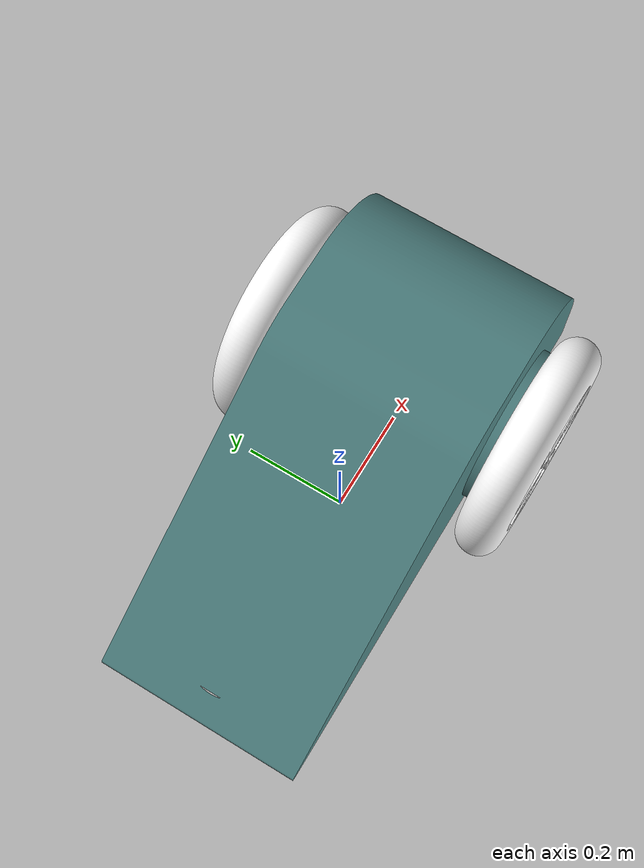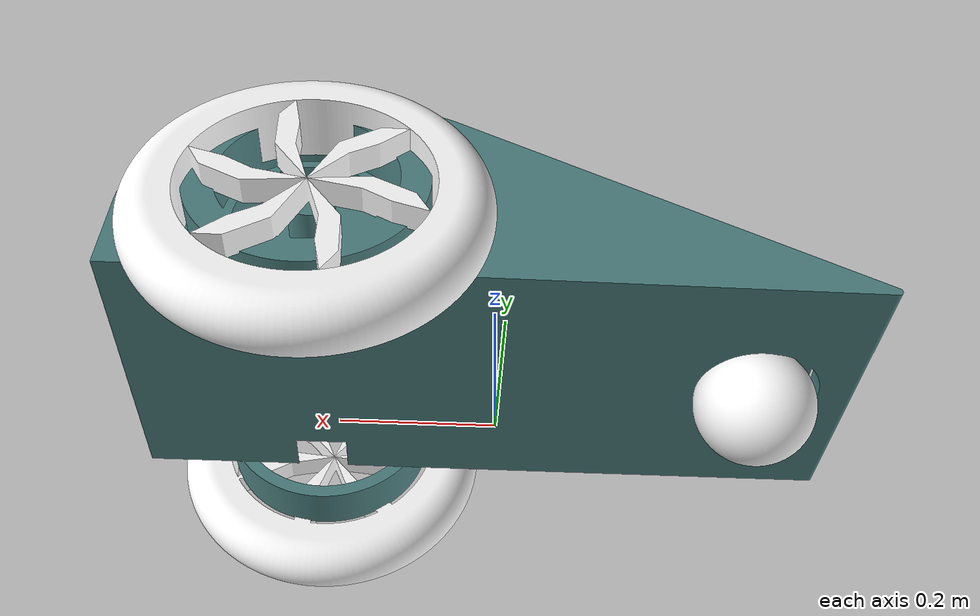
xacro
<?xml version="1.0"?>
<robot xmlns:xacro="http://www.ros.org/wiki/xacro" name="robot_car">

    <!-- Material definitions -->
    <material name="grey">
        <color rgba="0.3 0.5 0.5 1"/>
    </material>

    <material name="white">
        <color rgba="1 1 1 1"/>
    </material>

    <!-- Macro for collision -->
    <xacro:macro name="add_collision" params="name o_xyz o_rpy">
        <collision>
            <origin xyz="${o_xyz}" rpy="${o_rpy}"/>
            <geometry>
                <mesh filename="package://robot_car/meshes/${name}.stl" scale="0.01 0.01 0.01"/>
            </geometry>
        </collision>
    </xacro:macro>

    <!-- innertialro for collision -->

<xacro:macro name="add_inertial" params="mass ixx ixy ixz iyy iyz izz">
  <inertial>
    <origin xyz="0 0 0" rpy="0 0 0"/>
    <mass value="${mass}"/>
    <inertia
      ixx="${ixx}" ixy="${ixy}" ixz="${ixz}"
      iyy="${iyy}" iyz="${iyz}" izz="${izz}"/>
  </inertial>
</xacro:macro>

<xacro:macro name="wheel_inertial" params="mass radius height">
  <inertial>
    <origin xyz="0 0 0" rpy="0 0 0"/>
    <mass value="${mass}"/>
    <inertia
      ixx="${(1/12.0) * mass * (3*radius*radius + height*height)}"
      ixy="0.0"
      ixz="0.0"
      iyy="${0.5 * mass * radius * radius}"
      iyz="0.0"
      izz="${(1/12.0) * mass * (3*radius*radius + height*height)}"/>
  </inertial>
</xacro:macro>

    <!-- Base link -->
    <link name="base_link"/>

    <!-- Caster wheel -->
    <link name="caster_wheel">
        <visual>
            <origin xyz="0 0 0" rpy="0 0 0"/>
            <geometry>
                <mesh filename="package://robot_car/meshes/cast.stl" scale="0.01 0.01 0.01"/>
            </geometry>
            <material name="white"/>
        </visual>
        <xacro:add_collision name="cast" o_xyz="0 0 0" o_rpy="0 0 0"/>

    <xacro:add_inertial
  mass="0.00271"
  ixx="0.059836" ixy="0" ixz="0"
  iyy="0.059846" iyz="0" izz="0.059846"/>

    </link>

    <!-- Car body -->
    <link name="car_body">
        <visual>
            <origin xyz="0 0 0" rpy="0 0 0"/>
            <geometry>
                <mesh filename="package://robot_car/meshes/car_body.stl" scale="0.01 0.01 0.01"/>
            </geometry>
            <material name="grey"/>
        </visual>
        <xacro:add_collision name="car_body" o_xyz="0 0 0" o_rpy="0 0 0"/>
    <xacro:add_inertial
    mass="0.1033"
    ixx="18.650688" ixy="0" ixz="0"
    iyy="50.777644" iyz="0" izz="57.031280"/>

    </link>

    <!-- Left wheel -->
    <link name="left_wheel">
        <visual>
            <origin xyz="0 0 0" rpy="0 0 0"/>
            <geometry>
                <mesh filename="package://robot_car/meshes/wheel1.stl" scale="0.01 0.01 0.01"/>
            </geometry>
            <material name="white"/>
        </visual>
        <xacro:add_collision name="wheel1" o_xyz="0 0 0" o_rpy="0 0 0"/>
      <xacro:wheel_inertial mass="1.0" radius="0.022225" height="0.008636"/>

    </link>

    <!-- Right wheel -->
    <link name="right_wheel">
        <visual>
            <origin xyz="0 0 0" rpy="0 0 0"/>
            <geometry>
                <mesh filename="package://robot_car/meshes/wheel1.stl" scale="0.01 0.01 0.01"/>
            </geometry>
            <material name="white"/>
        </visual>
        <xacro:add_collision name="wheel1" o_xyz="0 0 0" o_rpy="0 0 0"/>
      <xacro:wheel_inertial mass="1.0" radius="0.022225" height="0.008636"/>

    </link>

    <!-- Joints -->
    <joint name="base_car_joint" type="fixed">
        <parent link="base_link"/>
        <child link="car_body"/>
        <origin xyz="0 0 0.01" rpy="0 0 0"/>
    </joint>

    <joint name="caster_joint" type="continuous">
        <parent link="car_body"/>
        <child link="caster_wheel"/>
        <origin xyz="-0.35 0 -0.08" rpy="0 0 0"/>
        <axis xyz="0 0 1"/>
    </joint>

    <joint name="left_wheel_car_joint" type="continuous">
        <parent link="car_body"/>
        <child link="left_wheel"/>
        <origin xyz="0.2 -0.225 0.08" rpy="0 0 0"/>
        <axis xyz="0 1 0"/>
    </joint>

    <joint name="right_wheel_car_joint" type="continuous">
        <parent link="car_body"/>
        <child link="right_wheel"/>
        <origin xyz="0.2 0.225 0.15" rpy="3.1416 0 0"/>
        <axis xyz="0 1 0"/>
    </joint>

</robot>
